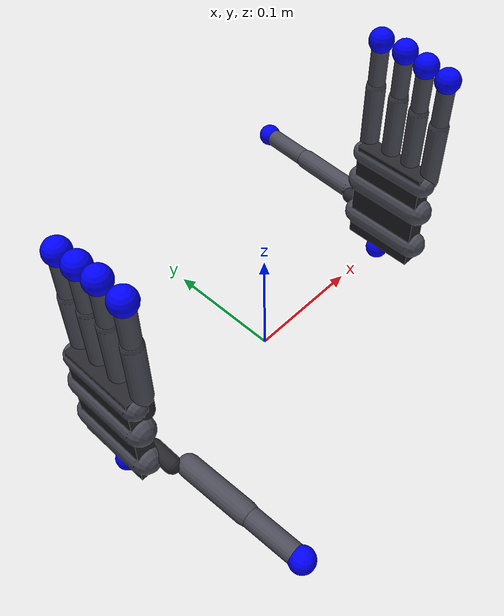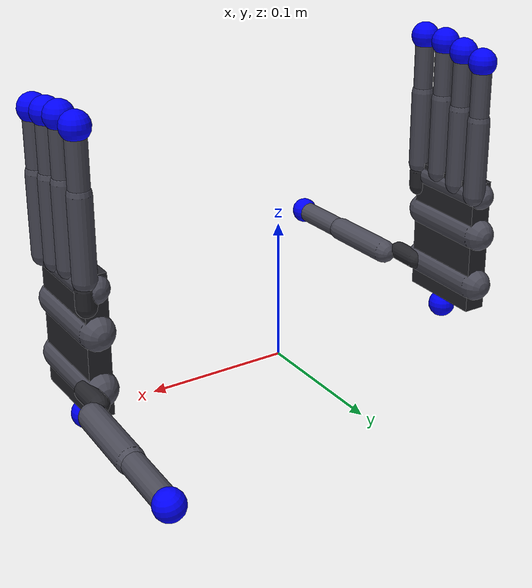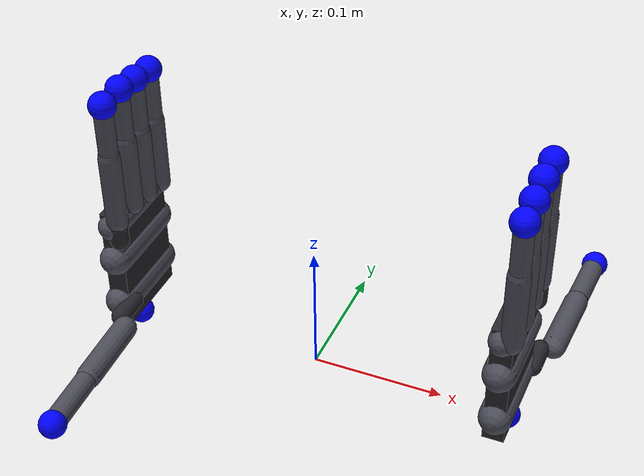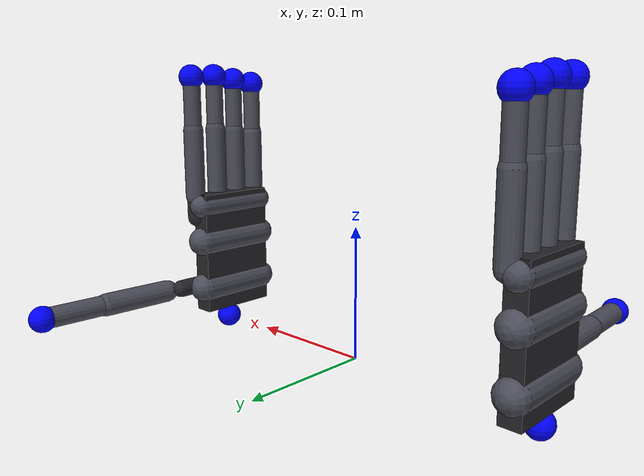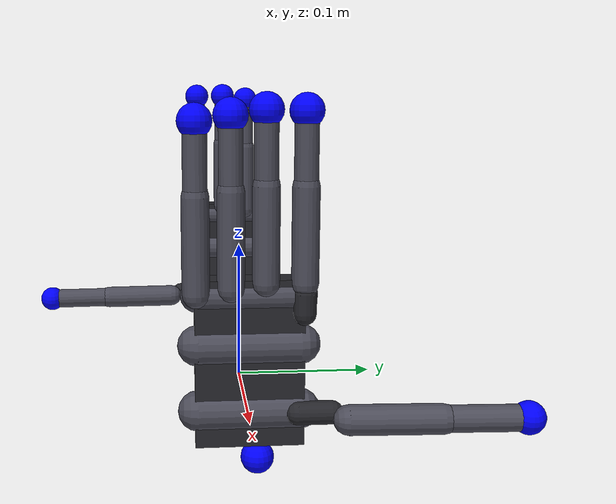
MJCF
<?xml version='1.0' encoding='utf-8'?>
<mujoco model="xhand_bimanual_lite">
  <compiler angle="radian" autolimits="true" fusestatic="false" />
  <worldbody>
    <light name="key" pos="0.5 0.5 1.0" dir="-1 -0.5 -0.5" cutoff="45" diffuse="0.6 0.6 0.6" directional="true" />
    <light name="fill" pos="-0.5 -0.5 1.0" dir="0.8 0.5 -0.6" cutoff="60" diffuse="0.3 0.3 0.3" directional="true" />
    <camera name="front" pos="0 -0.5 0.3" xyaxes="1 0 0 0 0.5 1" fovy="60" />

    <!-- ==================== RIGHT HAND ==================== -->
    <body name="xhand_right_base" pos="0.15 0 0">
      <!-- Palm visual: box approximating palm shape -->
      <geom type="box" size="0.008 0.032 0.050" pos="0 -0.005 0.060" rgba="0.15 0.15 0.17 1" />
      <joint name="xhand_right_floating_base" type="free" />
      <site name="xhand_right_wrist_site" size="0.01" rgba="0 1 1 0.5" />
      <geom class="collision" fromto="0 0.025 0.03  0 -0.035 0.03" size="0.012" name="right_palm_col1" />
      <geom class="collision" fromto="0 0.025 0.07  0 -0.035 0.07" size="0.012" name="right_palm_col2" />
      <geom class="collision" fromto="0 0.025 0.10  0 -0.035 0.10" size="0.010" name="right_palm_col3" />
      <body name="right_hand_thumb_bend_link" pos="0.0095 0.0228 0.0305">
        <inertial pos="-0.00116534 0.0144359 5.40665e-05" quat="0.5 0.5 -0.5 0.5" mass="0.0115145" diaginertia="1.57e-06 1.55e-06 6.2e-07" />
        <joint name="right_hand_thumb_bend_joint" pos="0 0 0" axis="0 0 -1" range="0 1.832" actuatorfrcrange="-1.1 1.1" />
        <geom type="capsule" fromto="0 0 0  0 0.020 0" size="0.007" rgba="0.15 0.15 0.17 1" />
        <body name="right_hand_thumb_rota_link1" pos="0.0083177 0.028599 -0.00178" quat="0.99124 0.00265603 0.130499 -0.0201745">
          <inertial pos="-0.000360409 0.0287658 0.00133255" quat="0.650659 0.459744 -0.498146 0.342241" mass="0.132385" diaginertia="4.41214e-05 3.90963e-05 1.40008e-05" />
          <joint name="right_hand_thumb_rota_joint1" pos="0 0 0" axis="1 0 0" range="-0.698 1.57" actuatorfrcrange="-1.1 1.1" />
          <geom class="collision" fromto="0 0 0  0 0.0553 0" size="0.009" name="right_thumb1_col" />
          <body name="right_hand_thumb_rota_link2" pos="0 0.0553 0">
            <inertial pos="-0.000878125 0.0226175 0.000584933" quat="0.552017 0.570821 -0.436085 0.423404" mass="0.0353687" diaginertia="9.15457e-06 7.80449e-06 3.52417e-06" />
            <joint name="right_hand_thumb_rota_joint2" pos="0 0 0" axis="1 0 0" range="0 1.57" actuatorfrcrange="-0.4 0.4" />
            <geom class="collision" fromto="0 0 0  0 0.0502 0" size="0.008" name="right_thumb2_col" />
            <geom type="sphere" pos="0 0.0502276 0" size="0.007" rgba="0.8 0.2 0.2 1" />
            <site name="xhand_right_thumb_tip_site" pos="0 0.0502276 0" size="0.005" rgba="1 0 0 1" />
          </body>
        </body>
      </body>
      <body name="right_hand_index_bend_link" pos="0.0065 0.0265 0.0899">
        <inertial pos="-0.000715851 0.000118998 0.0111903" quat="0.706498 -0.00638614 -0.000678996 0.707686" mass="0.068721" diaginertia="1.70709e-05 1.64313e-05 3.42781e-06" />
        <joint name="right_hand_index_bend_joint" pos="0 0 0" axis="-1 0 0" range="-0.174 0.174" actuatorfrcrange="-0.4 0.4" />
        <geom type="capsule" fromto="0 0 0  0 0 0.012" size="0.007" rgba="0.15 0.15 0.17 1" />
        <body name="right_hand_index_rota_link1" pos="0 0 0.0178">
          <inertial pos="0.000613547 0.000132563 0.0355807" quat="0.709402 -0.00197562 0.0120134 0.704699" mass="0.063083" diaginertia="1.7412e-05 1.68743e-05 3.21663e-06" />
          <joint name="right_hand_index_joint1" pos="0 0 0" axis="0 1 0" range="0 1.919" actuatorfrcrange="-1.1 1.1" />
          <geom class="collision" fromto="0 0 0  0 0 0.0558" size="0.008" name="right_index1_col" />
          <body name="right_hand_index_rota_link2" pos="0 0 0.0558">
            <inertial pos="0.00113673 -0.000244276 0.0215292" quat="0.999532 -0.0305525 -0.00125688 0.000779224" mass="0.0160239" diaginertia="2.89425e-06 2.8494e-06 8.70431e-07" />
            <joint name="right_hand_index_joint2" pos="0 0 0" axis="0 1 0" range="0 1.919" actuatorfrcrange="-0.4 0.4" />
            <geom class="collision" fromto="0 0 0  0 0 0.0422" size="0.007" name="right_index2_col" />
            <geom type="sphere" pos="0 0 0.0422483" size="0.006" rgba="0.8 0.2 0.2 1" />
            <site name="xhand_right_index_finger_tip_site" pos="0 0 0.0422483" size="0.005" rgba="1 0 0 1" />
          </body>
        </body>
      </body>
      <body name="right_hand_mid_link1" pos="0.0065 0.004 0.1082">
        <inertial pos="0.000511197 3.55135e-05 0.0332759" quat="0.718076 0.0151706 0.0298333 0.695159" mass="0.063083" diaginertia="1.7411e-05 1.68756e-05 3.21328e-06" />
        <joint name="right_hand_mid_joint1" pos="0 0 0" axis="0 1 0" range="0 1.919" actuatorfrcrange="-1.1 1.1" />
        <geom class="collision" fromto="0 0 0  0 0 0.0558" size="0.008" name="right_mid1_col" />
        <body name="right_hand_mid_link2" pos="0 0 0.0558">
          <inertial pos="0.00113673 -0.000244276 0.0215292" quat="0.990864 -0.0238438 0.0479849 0.123764" mass="0.0160239" diaginertia="2.95368e-06 2.90633e-06 8.74071e-07" />
          <joint name="right_hand_mid_joint2" pos="0 0 0" axis="0 1 0" range="0 1.919" actuatorfrcrange="-0.4 0.4" />
          <geom class="collision" fromto="0 0 0  0 0 0.0422" size="0.007" name="right_mid2_col" />
          <geom type="sphere" pos="0 0 0.042248" size="0.006" rgba="0.8 0.2 0.2 1" />
          <site name="xhand_right_middle_finger_tip_site" pos="0 0 0.042248" size="0.005" rgba="1 0 0 1" />
        </body>
      </body>
      <body name="right_hand_ring_link1" pos="0.0065 -0.016 0.1052">
        <inertial pos="0.000511197 3.55135e-05 0.0332759" quat="0.718076 0.0151706 0.0298333 0.695159" mass="0.063083" diaginertia="1.7411e-05 1.68756e-05 3.21328e-06" />
        <joint name="right_hand_ring_joint1" pos="0 0 0" axis="0 1 0" range="0 1.919" actuatorfrcrange="-1.1 1.1" />
        <geom class="collision" fromto="0 0 0  0 0 0.0558" size="0.008" name="right_ring1_col" />
        <body name="right_hand_ring_link2" pos="0 0 0.0558">
          <inertial pos="0.00113673 -0.000244276 0.0215292" quat="0.990864 -0.0238438 0.0479849 0.123764" mass="0.0160239" diaginertia="2.95369e-06 2.90633e-06 8.74071e-07" />
          <joint name="right_hand_ring_joint2" pos="0 0 0" axis="0 1 0" range="0 1.919" actuatorfrcrange="-0.4 0.4" />
          <geom class="collision" fromto="0 0 0  0 0 0.0422" size="0.007" name="right_ring2_col" />
          <geom type="sphere" pos="0 0 0.0422483" size="0.006" rgba="0.8 0.2 0.2 1" />
          <site name="xhand_right_ring_finger_tip_site" pos="0 0 0.0422483" size="0.005" rgba="1 0 0 1" />
        </body>
      </body>
      <body name="right_hand_pinky_link1" pos="0.0065 -0.036 0.1022">
        <inertial pos="0.000511197 3.55135e-05 0.0332759" quat="0.718076 0.0151706 0.0298333 0.695159" mass="0.063083" diaginertia="1.7411e-05 1.68756e-05 3.21328e-06" />
        <joint name="right_hand_pinky_joint1" pos="0 0 0" axis="0 1 0" range="0 1.919" actuatorfrcrange="-1.1 1.1" />
        <geom class="collision" fromto="0 0 0  0 0 0.0558" size="0.008" name="right_pinky1_col" />
        <body name="right_hand_pinky_link2" pos="0 0 0.0558">
          <inertial pos="0.00113673 -0.000244276 0.0215292" quat="0.990864 -0.0238438 0.0479849 0.123764" mass="0.0160239" diaginertia="2.95369e-06 2.90633e-06 8.74071e-07" />
          <joint name="right_hand_pinky_joint2" pos="0 0 0" axis="0 1 0" range="0 1.919" actuatorfrcrange="-0.4 0.4" />
          <geom class="collision" fromto="0 0 0  0 0 0.0422" size="0.007" name="right_pinky2_col" />
          <geom type="sphere" pos="0 0 0.0422483" size="0.006" rgba="0.8 0.2 0.2 1" />
          <site name="xhand_right_pinky_finger_tip_site" pos="0 0 0.0422483" size="0.005" rgba="1 0 0 1" />
        </body>
      </body>
    </body>

    <!-- Right hand mocap bodies (Vuer convention: {side}-{joint}) -->
    <body mocap="true" name="right-wrist" pos="0.15 0 0">
      <site name="right-wrist-mocap-site" rgba="0 0 1 1.0" size=".01" />
    </body>
    <body mocap="true" name="right-thumb-tip" pos="0.172111 0.156839 0.028720" quat="0.991240 0.002656 0.130499 -0.020174">
      <site name="right-thumb-tip-mocap-site" rgba="0 0 1 1.0" size=".01" />
    </body>
    <body mocap="true" name="right-index-finger-tip" pos="0.156500 0.026500 0.205748" quat="1 0 0 0">
      <site name="right-index-finger-tip-mocap-site" rgba="0 0 1 1.0" size=".01" />
    </body>
    <body mocap="true" name="right-middle-finger-tip" pos="0.156500 0.004000 0.206248" quat="1 0 0 0">
      <site name="right-middle-finger-tip-mocap-site" rgba="0 0 1 1.0" size=".01" />
    </body>
    <body mocap="true" name="right-ring-finger-tip" pos="0.156500 -0.016000 0.203248" quat="1 0 0 0">
      <site name="right-ring-finger-tip-mocap-site" rgba="0 0 1 1.0" size=".01" />
    </body>
    <body mocap="true" name="right-pinky-finger-tip" pos="0.156500 -0.036000 0.200248" quat="1 0 0 0">
      <site name="right-pinky-finger-tip-mocap-site" rgba="0 0 1 1.0" size=".01" />
    </body>

    <!-- ==================== LEFT HAND ==================== -->
    <body name="xhand_left_base" pos="-0.15 0 0">
      <!-- Palm visual: box approximating palm shape -->
      <geom type="box" size="0.008 0.032 0.050" pos="0 0.005 0.060" rgba="0.15 0.15 0.17 1" />
      <joint name="xhand_left_floating_base" type="free" />
      <site name="xhand_left_wrist_site" size="0.01" rgba="0 1 1 0.5" quat="0 0 0 1" />
      <geom class="collision" fromto="0 -0.025 0.03  0 0.035 0.03" size="0.012" name="left_palm_col1" />
      <geom class="collision" fromto="0 -0.025 0.07  0 0.035 0.07" size="0.012" name="left_palm_col2" />
      <geom class="collision" fromto="0 -0.025 0.10  0 0.035 0.10" size="0.010" name="left_palm_col3" />
      <body name="left_hand_thumb_bend_link" pos="0.0095 -0.0228 0.0305">
        <inertial pos="-0.00116534 -0.0144359 5.40665e-05" quat="0.5 0.5 -0.5 0.5" mass="0.0115145" diaginertia="1.57e-06 1.55e-06 6.2e-07" />
        <joint name="left_hand_thumb_bend_joint" pos="0 0 0" axis="0 0 1" range="0 1.832" actuatorfrcrange="-1.1 1.1" />
        <geom type="capsule" fromto="0 0 0  0 -0.020 0" size="0.007" rgba="0.15 0.15 0.17 1" />
        <body name="left_hand_thumb_rota_link1" pos="0.0083177 -0.028599 -0.00178" quat="0.99124 -0.00265603 0.130499 0.0201745">
          <inertial pos="-0.000360409 -0.0287658 0.00133255" quat="0.650659 0.459744 -0.498146 0.342241" mass="0.132385" diaginertia="4.41214e-05 3.90963e-05 1.40008e-05" />
          <joint name="left_hand_thumb_rota_joint1" pos="0 0 0" axis="-1 0 0" range="-0.698 1.57" actuatorfrcrange="-1.1 1.1" />
          <geom class="collision" fromto="0 0 0  0 -0.0553 0" size="0.009" name="left_thumb1_col" />
          <body name="left_hand_thumb_rota_link2" pos="0 -0.0553 0">
            <inertial pos="-0.000878125 -0.0226175 0.000584933" quat="0.552017 0.570821 -0.436085 0.423404" mass="0.0353687" diaginertia="9.15457e-06 7.80449e-06 3.52417e-06" />
            <joint name="left_hand_thumb_rota_joint2" pos="0 0 0" axis="-1 0 0" range="0 1.57" actuatorfrcrange="-0.4 0.4" />
            <geom class="collision" fromto="0 0 0  0 -0.0502 0" size="0.008" name="left_thumb2_col" />
            <geom type="sphere" pos="0 -0.0502276 0" size="0.007" rgba="0.8 0.2 0.2 1" />
            <site name="xhand_left_thumb_tip_site" pos="0 -0.0502276 0" size="0.005" rgba="1 0 0 1" />
          </body>
        </body>
      </body>
      <body name="left_hand_index_bend_link" pos="0.0065 -0.0265 0.0899">
        <inertial pos="-0.000715851 0.000118998 0.0111903" quat="0.706498 -0.00638614 -0.000678996 0.707686" mass="0.068721" diaginertia="1.70709e-05 1.64313e-05 3.42781e-06" />
        <joint name="left_hand_index_bend_joint" pos="0 0 0" axis="1 0 0" range="-0.174 0.174" actuatorfrcrange="-0.4 0.4" />
        <geom type="capsule" fromto="0 0 0  0 0 0.012" size="0.007" rgba="0.15 0.15 0.17 1" />
        <body name="left_hand_index_rota_link1" pos="0 0 0.0178">
          <inertial pos="0.000613547 0.000132563 0.0355807" quat="0.709402 -0.00197562 0.0120134 0.704699" mass="0.063083" diaginertia="1.7412e-05 1.68743e-05 3.21663e-06" />
          <joint name="left_hand_index_joint1" pos="0 0 0" axis="0 1 0" range="0 1.919" actuatorfrcrange="-1.1 1.1" />
          <geom class="collision" fromto="0 0 0  0 0 0.0558" size="0.008" name="left_index1_col" />
          <body name="left_hand_index_rota_link2" pos="0 0 0.0558">
            <inertial pos="0.00113673 -0.000244276 0.0215292" quat="0.999532 -0.0305525 -0.00125688 0.000779224" mass="0.0160239" diaginertia="2.89425e-06 2.8494e-06 8.70431e-07" />
            <joint name="left_hand_index_joint2" pos="0 0 0" axis="0 1 0" range="0 1.919" actuatorfrcrange="-0.4 0.4" />
            <geom class="collision" fromto="0 0 0  0 0 0.0422" size="0.007" name="left_index2_col" />
            <geom type="sphere" pos="0 0 0.0422483" size="0.006" rgba="0.8 0.2 0.2 1" />
            <site name="xhand_left_index_finger_tip_site" pos="0 0 0.0422483" size="0.005" rgba="1 0 0 1" />
          </body>
        </body>
      </body>
      <body name="left_hand_mid_link1" pos="0.0065 -0.004 0.1082">
        <inertial pos="0.000511197 3.55135e-05 0.0332759" quat="0.718076 0.0151706 0.0298333 0.695159" mass="0.063083" diaginertia="1.7411e-05 1.68756e-05 3.21328e-06" />
        <joint name="left_hand_mid_joint1" pos="0 0 0" axis="0 1 0" range="0 1.919" actuatorfrcrange="-1.1 1.1" />
        <geom class="collision" fromto="0 0 0  0 0 0.0558" size="0.008" name="left_mid1_col" />
        <body name="left_hand_mid_link2" pos="0 0 0.0558">
          <inertial pos="0.00113673 -0.000244276 0.0215292" quat="0.990864 -0.0238438 0.0479849 0.123764" mass="0.0160239" diaginertia="2.95368e-06 2.90633e-06 8.74071e-07" />
          <joint name="left_hand_mid_joint2" pos="0 0 0" axis="0 1 0" range="0 1.919" actuatorfrcrange="-0.4 0.4" />
          <geom class="collision" fromto="0 0 0  0 0 0.0422" size="0.007" name="left_mid2_col" />
          <geom type="sphere" pos="0 0 0.042248" size="0.006" rgba="0.8 0.2 0.2 1" />
          <site name="xhand_left_middle_finger_tip_site" pos="0 0 0.042248" size="0.005" rgba="1 0 0 1" />
        </body>
      </body>
      <body name="left_hand_ring_link1" pos="0.0065 0.016 0.1052">
        <inertial pos="0.000511197 3.55135e-05 0.0332759" quat="0.718076 0.0151706 0.0298333 0.695159" mass="0.063083" diaginertia="1.7411e-05 1.68756e-05 3.21328e-06" />
        <joint name="left_hand_ring_joint1" pos="0 0 0" axis="0 1 0" range="0 1.919" actuatorfrcrange="-1.1 1.1" />
        <geom class="collision" fromto="0 0 0  0 0 0.0558" size="0.008" name="left_ring1_col" />
        <body name="left_hand_ring_link2" pos="0 0 0.0558">
          <inertial pos="0.00113673 -0.000244276 0.0215292" quat="0.990864 -0.0238438 0.0479849 0.123764" mass="0.0160239" diaginertia="2.95369e-06 2.90633e-06 8.74071e-07" />
          <joint name="left_hand_ring_joint2" pos="0 0 0" axis="0 1 0" range="0 1.919" actuatorfrcrange="-0.4 0.4" />
          <geom class="collision" fromto="0 0 0  0 0 0.0422" size="0.007" name="left_ring2_col" />
          <geom type="sphere" pos="0 0 0.0422483" size="0.006" rgba="0.8 0.2 0.2 1" />
          <site name="xhand_left_ring_finger_tip_site" pos="0 0 0.0422483" size="0.005" rgba="1 0 0 1" />
        </body>
      </body>
      <body name="left_hand_pinky_link1" pos="0.0065 0.036 0.1022">
        <inertial pos="0.000511197 3.55135e-05 0.0332759" quat="0.718076 0.0151706 0.0298333 0.695159" mass="0.063083" diaginertia="1.7411e-05 1.68756e-05 3.21328e-06" />
        <joint name="left_hand_pinky_joint1" pos="0 0 0" axis="0 1 0" range="0 1.919" actuatorfrcrange="-1.1 1.1" />
        <geom class="collision" fromto="0 0 0  0 0 0.0558" size="0.008" name="left_pinky1_col" />
        <body name="left_hand_pinky_link2" pos="0 0 0.0558">
          <inertial pos="0.00113673 -0.000244276 0.0215292" quat="0.990864 -0.0238438 0.0479849 0.123764" mass="0.0160239" diaginertia="2.95369e-06 2.90633e-06 8.74071e-07" />
          <joint name="left_hand_pinky_joint2" pos="0 0 0" axis="0 1 0" range="0 1.919" actuatorfrcrange="-0.4 0.4" />
          <geom class="collision" fromto="0 0 0  0 0 0.0422" size="0.007" name="left_pinky2_col" />
          <geom type="sphere" pos="0 0 0.0422483" size="0.006" rgba="0.8 0.2 0.2 1" />
          <site name="xhand_left_pinky_finger_tip_site" pos="0 0 0.0422483" size="0.005" rgba="1 0 0 1" />
        </body>
      </body>
    </body>

    <!-- Left hand mocap bodies (Vuer convention: {side}-{joint}) -->
    <body mocap="true" name="left-wrist" pos="-0.15 0 0">
      <site name="left-wrist-mocap-site" rgba="0 0 1 1.0" size=".01" />
    </body>
    <body mocap="true" name="left-thumb-tip" pos="-0.127898 -0.156600 0.028720" quat="0.991240 -0.002656 0.130499 0.020175">
      <site name="left-thumb-tip-mocap-site" rgba="0 0 1 1.0" size=".01" />
    </body>
    <body mocap="true" name="left-index-finger-tip" pos="-0.143500 -0.026500 0.205748" quat="1 0 0 0">
      <site name="left-index-finger-tip-mocap-site" rgba="0 0 1 1.0" size=".01" />
    </body>
    <body mocap="true" name="left-middle-finger-tip" pos="-0.143500 -0.004000 0.206248" quat="1 0 0 0">
      <site name="left-middle-finger-tip-mocap-site" rgba="0 0 1 1.0" size=".01" />
    </body>
    <body mocap="true" name="left-ring-finger-tip" pos="-0.143500 0.016000 0.203248" quat="1 0 0 0">
      <site name="left-ring-finger-tip-mocap-site" rgba="0 0 1 1.0" size=".01" />
    </body>
    <body mocap="true" name="left-pinky-finger-tip" pos="-0.143500 0.036000 0.200248" quat="1 0 0 0">
      <site name="left-pinky-finger-tip-mocap-site" rgba="0 0 1 1.0" size=".01" />
    </body>
  </worldbody>
  <option iterations="50" tolerance="1e-8" solver="Newton" integrator="implicit" />
  <size njmax="2000" nconmax="2000" />
  <default>
    <joint damping="0.1" limited="true" solimplimit="0.95 0.99 0.001" solreflimit="0.02 1" />
    <equality solref="0.02 1" solimp="0.9 0.95 0.001 0.5 2" />
    <!-- All collision disabled — not needed for IK teleop -->
    <geom contype="0" conaffinity="0" />
    <default class="collision">
      <geom contype="1" conaffinity="1" group="0" rgba="0.3 0.3 0.35 1" type="capsule" />
    </default>
  </default>
  <visual>
    <headlight diffuse="0.6 0.6 0.6" ambient="0.3 0.3 0.3" specular="0 0 0" />
  </visual>
  <equality>
    <!-- Right hand welds -->
    <weld site1="xhand_right_wrist_site" site2="right-wrist-mocap-site" />
    <weld site1="xhand_right_thumb_tip_site" site2="right-thumb-tip-mocap-site" />
    <weld site1="xhand_right_index_finger_tip_site" site2="right-index-finger-tip-mocap-site" />
    <weld site1="xhand_right_middle_finger_tip_site" site2="right-middle-finger-tip-mocap-site" />
    <weld site1="xhand_right_ring_finger_tip_site" site2="right-ring-finger-tip-mocap-site" />
    <weld site1="xhand_right_pinky_finger_tip_site" site2="right-pinky-finger-tip-mocap-site" />
    <!-- Left hand welds -->
    <weld site1="xhand_left_wrist_site" site2="left-wrist-mocap-site" />
    <weld site1="xhand_left_thumb_tip_site" site2="left-thumb-tip-mocap-site" />
    <weld site1="xhand_left_index_finger_tip_site" site2="left-index-finger-tip-mocap-site" />
    <weld site1="xhand_left_middle_finger_tip_site" site2="left-middle-finger-tip-mocap-site" />
    <weld site1="xhand_left_ring_finger_tip_site" site2="left-ring-finger-tip-mocap-site" />
    <weld site1="xhand_left_pinky_finger_tip_site" site2="left-pinky-finger-tip-mocap-site" />
  </equality>
</mujoco>
